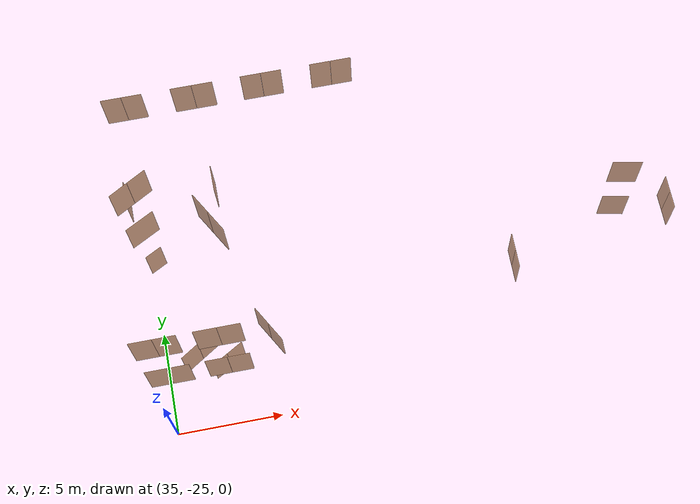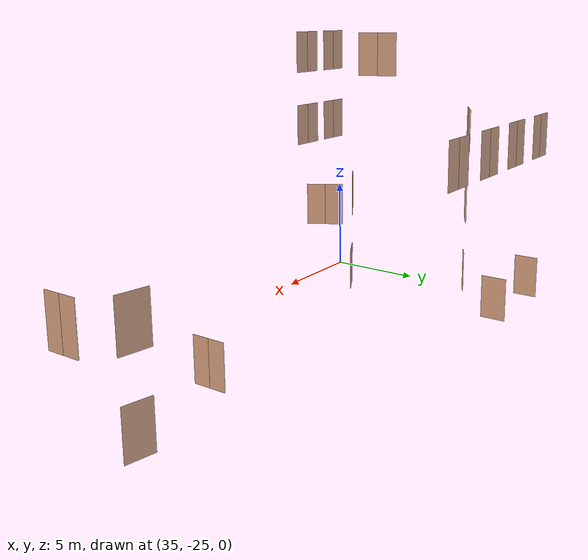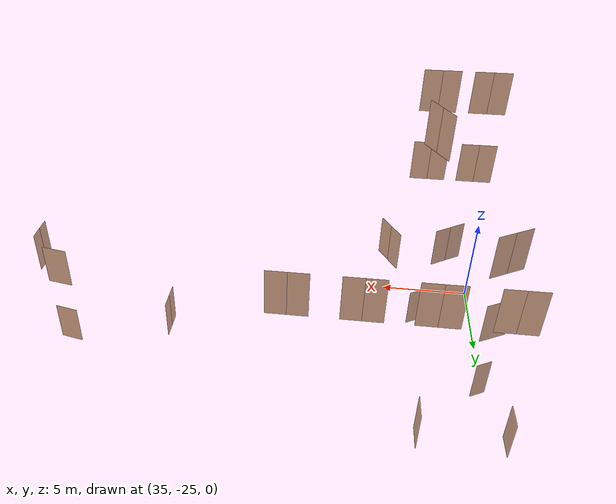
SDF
<sdf version="1.7">
 <world name="sim_world">
  <model name="Snull1">
   <pose>34.31579733412984 -13.190942015457559 0.0 0 0 -1.5647744371355659</pose>
   <link name="right">
    <pose>0 0 1.11 0 0 0</pose>
    <visual name="right_visual">
     <geometry><box><size>1.254855103408931 0.03 2.2</size></box></geometry>
     <material>
      <ambient>0.5 0.25 0 0.6</ambient>
      <diffuse>0.5 0.25 0 0.6</diffuse>
      <pbr><metal><metalness>0.0</metalness></metal></pbr>
     </material>
    </visual>
    <collision name="right_collision">
     <geometry><box><size>1.254855103408931 0.03 2.2</size></box></geometry>
     <surface><contact><collide_bitmask>0x02</collide_bitmask></contact></surface>
    </collision>
    <inertial>
     <mass>50.0</mass>
     <inertia><ixx>20.17041666666667</ixx><iyy>26.72775554396433</iyy><izz>6.564838877297662</izz></inertia>
    </inertial>
   </link>
   <joint name="right_joint" type="revolute">
    <parent>world</parent>
    <child>right</child>
    <axis><xyz>0 0 1</xyz><limit><lower>0</lower><upper>1.57</upper></limit></axis>
    <pose>0.6324275517044655 0 0 0 0 0</pose>
   </joint>
   <plugin name="register_component" filename="libregister_component.so">
    <component name="Door">
     <v_max_door>0.5</v_max_door>
     <a_max_door>0.3</a_max_door>
     <a_nom_door>0.15</a_nom_door>
     <dx_min_door>0.01</dx_min_door>
     <f_max_door>500.0</f_max_door>
     <ros_interface>true</ros_interface>
     <door name="Snull1" type="SwingDoor" left_joint_name="empty_joint" right_joint_name="right_joint"/>
    </component>
   </plugin>
  </model>
  <model name="Snull2">
   <pose>38.63398424373668 -13.186069521711525 0.0 0 0 1.5780668441691235</pose>
   <link name="right">
    <pose>0 0 1.11 0 0 0</pose>
    <visual name="right_visual">
     <geometry><box><size>1.2944066519722939 0.03 2.2</size></box></geometry>
     <material>
      <ambient>0.5 0.25 0 0.6</ambient>
      <diffuse>0.5 0.25 0 0.6</diffuse>
      <pbr><metal><metalness>0.0</metalness></metal></pbr>
     </material>
    </visual>
    <collision name="right_collision">
     <geometry><box><size>1.2944066519722939 0.03 2.2</size></box></geometry>
     <surface><contact><collide_bitmask>0x02</collide_bitmask></contact></surface>
    </collision>
    <inertial>
     <mass>50.0</mass>
     <inertia><ixx>20.17041666666667</ixx><iyy>27.147869086125517</iyy><izz>6.984952419458847</izz></inertia>
    </inertial>
   </link>
   <joint name="right_joint" type="revolute">
    <parent>world</parent>
    <child>right</child>
    <axis><xyz>0 0 -1</xyz><limit><lower>0</lower><upper>1.57</upper></limit></axis>
    <pose>0.6522033259861469 0 0 0 0 0</pose>
   </joint>
   <plugin name="register_component" filename="libregister_component.so">
    <component name="Door">
     <v_max_door>0.5</v_max_door>
     <a_max_door>0.3</a_max_door>
     <a_nom_door>0.15</a_nom_door>
     <dx_min_door>0.01</dx_min_door>
     <f_max_door>500.0</f_max_door>
     <ros_interface>true</ros_interface>
     <door name="Snull2" type="SwingDoor" left_joint_name="empty_joint" right_joint_name="right_joint"/>
    </component>
   </plugin>
  </model>
  <model name="Snull3">
   <pose>52.391853041108135 -19.739573610125817 0.0 0 0 -1.5707963267948966</pose>
   <link name="right">
    <pose>0.4211626778180184 0 1.11 0 0 0</pose>
    <visual name="right_visual">
     <geometry><box><size>0.8323253556360368 0.03 2.2</size></box></geometry>
     <material>
      <ambient>0.5 0.25 0 0.6</ambient>
      <diffuse>0.5 0.25 0 0.6</diffuse>
      <pbr><metal><metalness>0.0</metalness></metal></pbr>
     </material>
    </visual>
    <collision name="right_collision">
     <geometry><box><size>0.8323253556360368 0.03 2.2</size></box></geometry>
     <surface><contact><collide_bitmask>0x02</collide_bitmask></contact></surface>
    </collision>
    <inertial>
     <mass>50.0</mass>
     <inertia><ixx>20.17041666666667</ixx><iyy>23.053189573477734</iyy><izz>2.8902729068110635</izz></inertia>
    </inertial>
   </link>
   <joint name="right_joint" type="revolute">
    <parent>world</parent>
    <child>right</child>
    <axis><xyz>0 0 -1</xyz><limit><lower>0</lower><upper>1.57</upper></limit></axis>
    <pose>0.4211626778180184 0 0 0 0 0</pose>
   </joint>
   <link name="left">
    <pose>-0.4211626778180184 0 1.11 0 0 0</pose>
    <visual name="left_visual">
     <geometry><box><size>0.8323253556360368 0.03 2.2</size></box></geometry>
     <material>
      <ambient>0.5 0.25 0 0.6</ambient>
      <diffuse>0.5 0.25 0 0.6</diffuse>
      <pbr><metal><metalness>0.0</metalness></metal></pbr>
     </material>
    </visual>
    <collision name="left_collision">
     <geometry><box><size>0.8323253556360368 0.03 2.2</size></box></geometry>
     <surface><contact><collide_bitmask>0x02</collide_bitmask></contact></surface>
    </collision>
    <inertial>
     <mass>50.0</mass>
     <inertia><ixx>20.17041666666667</ixx><iyy>23.053189573477734</iyy><izz>2.8902729068110635</izz></inertia>
    </inertial>
   </link>
   <joint name="left_joint" type="revolute">
    <parent>world</parent>
    <child>left</child>
    <axis><xyz>0 0 -1</xyz><limit><lower>-1.57</lower><upper>0</upper></limit></axis>
    <pose>-0.4211626778180184 0 0 0 0 0</pose>
   </joint>
   <plugin name="register_component" filename="libregister_component.so">
    <component name="Door">
     <v_max_door>0.5</v_max_door>
     <a_max_door>0.3</a_max_door>
     <a_nom_door>0.15</a_nom_door>
     <dx_min_door>0.01</dx_min_door>
     <f_max_door>500.0</f_max_door>
     <ros_interface>true</ros_interface>
     <door name="Snull3" type="DoubleSwingDoor" left_joint_name="left_joint" right_joint_name="right_joint"/>
    </component>
   </plugin>
  </model>
  <model name="Snull4">
   <pose>57.814863906209126 -17.951051039838692 0.0 0 0 2.9326769838084155</pose>
   <link name="right">
    <pose>0 0 1.11 0 0 0</pose>
    <visual name="right_visual">
     <geometry><box><size>1.2797012906970477 0.03 2.2</size></box></geometry>
     <material>
      <ambient>0.5 0.25 0 0.6</ambient>
      <diffuse>0.5 0.25 0 0.6</diffuse>
      <pbr><metal><metalness>0.0</metalness></metal></pbr>
     </material>
    </visual>
    <collision name="right_collision">
     <geometry><box><size>1.2797012906970477 0.03 2.2</size></box></geometry>
     <surface><contact><collide_bitmask>0x02</collide_bitmask></contact></surface>
    </collision>
    <inertial>
     <mass>50.0</mass>
     <inertia><ixx>20.17041666666667</ixx><iyy>26.99014747254871</iyy><izz>6.827230805882041</izz></inertia>
    </inertial>
   </link>
   <joint name="right_joint" type="revolute">
    <parent>world</parent>
    <child>right</child>
    <axis><xyz>0 0 1</xyz><limit><lower>0</lower><upper>1.57</upper></limit></axis>
    <pose>0.6448506453485239 0 0 0 0 0</pose>
   </joint>
   <plugin name="register_component" filename="libregister_component.so">
    <component name="Door">
     <v_max_door>0.5</v_max_door>
     <a_max_door>0.3</a_max_door>
     <a_nom_door>0.15</a_nom_door>
     <dx_min_door>0.01</dx_min_door>
     <f_max_door>500.0</f_max_door>
     <ros_interface>true</ros_interface>
     <door name="Snull4" type="SwingDoor" left_joint_name="empty_joint" right_joint_name="right_joint"/>
    </component>
   </plugin>
  </model>
  <model name="Snull10">
   <pose>35.266232311540875 -16.49999999999999 0.0 0 0 -2.654102844831569</pose>
   <link name="right">
    <pose>0 0 1.11 0 0 0</pose>
    <visual name="right_visual">
     <geometry><box><size>0.8774159202349445 0.03 2.2</size></box></geometry>
     <material>
      <ambient>0.5 0.25 0 0.6</ambient>
      <diffuse>0.5 0.25 0 0.6</diffuse>
      <pbr><metal><metalness>0.0</metalness></metal></pbr>
     </material>
    </visual>
    <collision name="right_collision">
     <geometry><box><size>0.8774159202349445 0.03 2.2</size></box></geometry>
     <surface><contact><collide_bitmask>0x02</collide_bitmask></contact></surface>
    </collision>
    <inertial>
     <mass>50.0</mass>
     <inertia><ixx>20.17041666666667</ixx><iyy>23.374411237840565</iyy><izz>3.211494571173894</izz></inertia>
    </inertial>
   </link>
   <joint name="right_joint" type="revolute">
    <parent>world</parent>
    <child>right</child>
    <axis><xyz>0 0 -1</xyz><limit><lower>0</lower><upper>1.57</upper></limit></axis>
    <pose>0.44370796011747227 0 0 0 0 0</pose>
   </joint>
   <plugin name="register_component" filename="libregister_component.so">
    <component name="Door">
     <v_max_door>0.5</v_max_door>
     <a_max_door>0.3</a_max_door>
     <a_nom_door>0.15</a_nom_door>
     <dx_min_door>0.01</dx_min_door>
     <f_max_door>500.0</f_max_door>
     <ros_interface>true</ros_interface>
     <door name="Snull10" type="SwingDoor" left_joint_name="empty_joint" right_joint_name="right_joint"/>
    </component>
   </plugin>
  </model>
  <model name="Snull11">
   <pose>37.988257476757624 -22.20064966583279 0.0 0 0 0.5302253309043828</pose>
   <link name="right">
    <pose>0.43577267423389904 0 1.11 0 0 0</pose>
    <visual name="right_visual">
     <geometry><box><size>0.8615453484677981 0.03 2.2</size></box></geometry>
     <material>
      <ambient>0.5 0.25 0 0.6</ambient>
      <diffuse>0.5 0.25 0 0.6</diffuse>
      <pbr><metal><metalness>0.0</metalness></metal></pbr>
     </material>
    </visual>
    <collision name="right_collision">
     <geometry><box><size>0.8615453484677981 0.03 2.2</size></box></geometry>
     <surface><contact><collide_bitmask>0x02</collide_bitmask></contact></surface>
    </collision>
    <inertial>
     <mass>50.0</mass>
     <inertia><ixx>20.17041666666667</ixx><iyy>23.25941828111042</iyy><izz>3.0965016144437487</izz></inertia>
    </inertial>
   </link>
   <joint name="right_joint" type="revolute">
    <parent>world</parent>
    <child>right</child>
    <axis><xyz>0 0 -1</xyz><limit><lower>0</lower><upper>1.57</upper></limit></axis>
    <pose>0.43577267423389904 0 0 0 0 0</pose>
   </joint>
   <link name="left">
    <pose>-0.43577267423389904 0 1.11 0 0 0</pose>
    <visual name="left_visual">
     <geometry><box><size>0.8615453484677981 0.03 2.2</size></box></geometry>
     <material>
      <ambient>0.5 0.25 0 0.6</ambient>
      <diffuse>0.5 0.25 0 0.6</diffuse>
      <pbr><metal><metalness>0.0</metalness></metal></pbr>
     </material>
    </visual>
    <collision name="left_collision">
     <geometry><box><size>0.8615453484677981 0.03 2.2</size></box></geometry>
     <surface><contact><collide_bitmask>0x02</collide_bitmask></contact></surface>
    </collision>
    <inertial>
     <mass>50.0</mass>
     <inertia><ixx>20.17041666666667</ixx><iyy>23.25941828111042</iyy><izz>3.0965016144437487</izz></inertia>
    </inertial>
   </link>
   <joint name="left_joint" type="revolute">
    <parent>world</parent>
    <child>left</child>
    <axis><xyz>0 0 -1</xyz><limit><lower>-1.57</lower><upper>0</upper></limit></axis>
    <pose>-0.43577267423389904 0 0 0 0 0</pose>
   </joint>
   <plugin name="register_component" filename="libregister_component.so">
    <component name="Door">
     <v_max_door>0.5</v_max_door>
     <a_max_door>0.3</a_max_door>
     <a_nom_door>0.15</a_nom_door>
     <dx_min_door>0.01</dx_min_door>
     <f_max_door>500.0</f_max_door>
     <ros_interface>true</ros_interface>
     <door name="Snull11" type="DoubleSwingDoor" left_joint_name="left_joint" right_joint_name="right_joint"/>
    </component>
   </plugin>
  </model>
  <model name="0null3">
   <pose>59.31019676660564 -19.722286525034527 4.0 0 0 -1.5634548821842686</pose>
   <link name="right">
    <pose>0.38652424956682224 0 1.11 0 0 0</pose>
    <visual name="right_visual">
     <geometry><box><size>0.7630484991336445 0.03 2.2</size></box></geometry>
     <material>
      <ambient>0.5 0.25 0 0.6</ambient>
      <diffuse>0.5 0.25 0 0.6</diffuse>
      <pbr><metal><metalness>0.0</metalness></metal></pbr>
     </material>
    </visual>
    <collision name="right_collision">
     <geometry><box><size>0.7630484991336445 0.03 2.2</size></box></geometry>
     <surface><contact><collide_bitmask>0x02</collide_bitmask></contact></surface>
    </collision>
    <inertial>
     <mass>50.0</mass>
     <inertia><ixx>20.17041666666667</ixx><iyy>22.59267921679212</iyy><izz>2.4297625501254476</izz></inertia>
    </inertial>
   </link>
   <joint name="right_joint" type="revolute">
    <parent>world</parent>
    <child>right</child>
    <axis><xyz>0 0 -1</xyz><limit><lower>0</lower><upper>1.57</upper></limit></axis>
    <pose>0.38652424956682224 0 0 0 0 0</pose>
   </joint>
   <link name="left">
    <pose>-0.38652424956682224 0 1.11 0 0 0</pose>
    <visual name="left_visual">
     <geometry><box><size>0.7630484991336445 0.03 2.2</size></box></geometry>
     <material>
      <ambient>0.5 0.25 0 0.6</ambient>
      <diffuse>0.5 0.25 0 0.6</diffuse>
      <pbr><metal><metalness>0.0</metalness></metal></pbr>
     </material>
    </visual>
    <collision name="left_collision">
     <geometry><box><size>0.7630484991336445 0.03 2.2</size></box></geometry>
     <surface><contact><collide_bitmask>0x02</collide_bitmask></contact></surface>
    </collision>
    <inertial>
     <mass>50.0</mass>
     <inertia><ixx>20.17041666666667</ixx><iyy>22.59267921679212</iyy><izz>2.4297625501254476</izz></inertia>
    </inertial>
   </link>
   <joint name="left_joint" type="revolute">
    <parent>world</parent>
    <child>left</child>
    <axis><xyz>0 0 -1</xyz><limit><lower>-1.57</lower><upper>0</upper></limit></axis>
    <pose>-0.38652424956682224 0 0 0 0 0</pose>
   </joint>
   <plugin name="register_component" filename="libregister_component.so">
    <component name="Door">
     <v_max_door>0.5</v_max_door>
     <a_max_door>0.3</a_max_door>
     <a_nom_door>0.15</a_nom_door>
     <dx_min_door>0.01</dx_min_door>
     <f_max_door>500.0</f_max_door>
     <ros_interface>true</ros_interface>
     <door name="0null3" type="DoubleSwingDoor" left_joint_name="left_joint" right_joint_name="right_joint"/>
    </component>
   </plugin>
  </model>
  <model name="0null4">
   <pose>57.790818802972 -17.92288018519209 4.0 0 0 2.9607776920930116</pose>
   <link name="right">
    <pose>0 0 1.11 0 0 0</pose>
    <visual name="right_visual">
     <geometry><box><size>1.3758835635894442 0.03 2.2</size></box></geometry>
     <material>
      <ambient>0.5 0.25 0 0.6</ambient>
      <diffuse>0.5 0.25 0 0.6</diffuse>
      <pbr><metal><metalness>0.0</metalness></metal></pbr>
     </material>
    </visual>
    <collision name="right_collision">
     <geometry><box><size>1.3758835635894442 0.03 2.2</size></box></geometry>
     <surface><contact><collide_bitmask>0x02</collide_bitmask></contact></surface>
    </collision>
    <inertial>
     <mass>50.0</mass>
     <inertia><ixx>20.17041666666667</ixx><iyy>28.054398252314954</iyy><izz>7.891481585648284</izz></inertia>
    </inertial>
   </link>
   <joint name="right_joint" type="revolute">
    <parent>world</parent>
    <child>right</child>
    <axis><xyz>0 0 1</xyz><limit><lower>0</lower><upper>1.57</upper></limit></axis>
    <pose>0.6929417817947221 0 0 0 0 0</pose>
   </joint>
   <plugin name="register_component" filename="libregister_component.so">
    <component name="Door">
     <v_max_door>0.5</v_max_door>
     <a_max_door>0.3</a_max_door>
     <a_nom_door>0.15</a_nom_door>
     <dx_min_door>0.01</dx_min_door>
     <f_max_door>500.0</f_max_door>
     <ros_interface>true</ros_interface>
     <door name="0null4" type="SwingDoor" left_joint_name="empty_joint" right_joint_name="right_joint"/>
    </component>
   </plugin>
  </model>
  <model name="0null10">
   <pose>35.248963895008 -16.471735802561312 4.0 0 0 -2.6490270736152604</pose>
   <link name="right">
    <pose>0 0 1.11 0 0 0</pose>
    <visual name="right_visual">
     <geometry><box><size>1.4880229338693765 0.03 2.2</size></box></geometry>
     <material>
      <ambient>0.5 0.25 0 0.6</ambient>
      <diffuse>0.5 0.25 0 0.6</diffuse>
      <pbr><metal><metalness>0.0</metalness></metal></pbr>
     </material>
    </visual>
    <collision name="right_collision">
     <geometry><box><size>1.4880229338693765 0.03 2.2</size></box></geometry>
     <surface><contact><collide_bitmask>0x02</collide_bitmask></contact></surface>
    </collision>
    <inertial>
     <mass>50.0</mass>
     <inertia><ixx>20.17041666666667</ixx><iyy>29.39255104883845</iyy><izz>9.22963438217178</izz></inertia>
    </inertial>
   </link>
   <joint name="right_joint" type="revolute">
    <parent>world</parent>
    <child>right</child>
    <axis><xyz>0 0 -1</xyz><limit><lower>0</lower><upper>1.57</upper></limit></axis>
    <pose>0.7490114669346882 0 0 0 0 0</pose>
   </joint>
   <plugin name="register_component" filename="libregister_component.so">
    <component name="Door">
     <v_max_door>0.5</v_max_door>
     <a_max_door>0.3</a_max_door>
     <a_nom_door>0.15</a_nom_door>
     <dx_min_door>0.01</dx_min_door>
     <f_max_door>500.0</f_max_door>
     <ros_interface>true</ros_interface>
     <door name="0null10" type="SwingDoor" left_joint_name="empty_joint" right_joint_name="right_joint"/>
    </component>
   </plugin>
  </model>
  <model name="0null11">
   <pose>37.00974498749204 -22.76595228316468 4.0 0 0 0.5743019062294429</pose>
   <link name="right">
    <pose>0.47297792965331237 0 1.11 0 0 0</pose>
    <visual name="right_visual">
     <geometry><box><size>0.9359558593066247 0.03 2.2</size></box></geometry>
     <material>
      <ambient>0.5 0.25 0 0.6</ambient>
      <diffuse>0.5 0.25 0 0.6</diffuse>
      <pbr><metal><metalness>0.0</metalness></metal></pbr>
     </material>
    </visual>
    <collision name="right_collision">
     <geometry><box><size>0.9359558593066247 0.03 2.2</size></box></geometry>
     <surface><contact><collide_bitmask>0x02</collide_bitmask></contact></surface>
    </collision>
    <inertial>
     <mass>50.0</mass>
     <inertia><ixx>20.17041666666667</ixx><iyy>23.81672237737668</iyy><izz>3.6538057107100097</izz></inertia>
    </inertial>
   </link>
   <joint name="right_joint" type="revolute">
    <parent>world</parent>
    <child>right</child>
    <axis><xyz>0 0 -1</xyz><limit><lower>0</lower><upper>1.57</upper></limit></axis>
    <pose>0.47297792965331237 0 0 0 0 0</pose>
   </joint>
   <link name="left">
    <pose>-0.47297792965331237 0 1.11 0 0 0</pose>
    <visual name="left_visual">
     <geometry><box><size>0.9359558593066247 0.03 2.2</size></box></geometry>
     <material>
      <ambient>0.5 0.25 0 0.6</ambient>
      <diffuse>0.5 0.25 0 0.6</diffuse>
      <pbr><metal><metalness>0.0</metalness></metal></pbr>
     </material>
    </visual>
    <collision name="left_collision">
     <geometry><box><size>0.9359558593066247 0.03 2.2</size></box></geometry>
     <surface><contact><collide_bitmask>0x02</collide_bitmask></contact></surface>
    </collision>
    <inertial>
     <mass>50.0</mass>
     <inertia><ixx>20.17041666666667</ixx><iyy>23.81672237737668</iyy><izz>3.6538057107100097</izz></inertia>
    </inertial>
   </link>
   <joint name="left_joint" type="revolute">
    <parent>world</parent>
    <child>left</child>
    <axis><xyz>0 0 -1</xyz><limit><lower>-1.57</lower><upper>0</upper></limit></axis>
    <pose>-0.47297792965331237 0 0 0 0 0</pose>
   </joint>
   <plugin name="register_component" filename="libregister_component.so">
    <component name="Door">
     <v_max_door>0.5</v_max_door>
     <a_max_door>0.3</a_max_door>
     <a_nom_door>0.15</a_nom_door>
     <dx_min_door>0.01</dx_min_door>
     <f_max_door>500.0</f_max_door>
     <ros_interface>true</ros_interface>
     <door name="0null11" type="DoubleSwingDoor" left_joint_name="left_joint" right_joint_name="right_joint"/>
    </component>
   </plugin>
  </model>
  <model name="nullh">
   <pose>40.21235485195831 -22.439999253257646 4.0 0 0 2.0911618790122812</pose>
   <link name="right">
    <pose>0.47946386376674144 0 1.11 0 0 0</pose>
    <visual name="right_visual">
     <geometry><box><size>0.9489277275334829 0.03 2.2</size></box></geometry>
     <material>
      <ambient>0.5 0.25 0 0.6</ambient>
      <diffuse>0.5 0.25 0 0.6</diffuse>
      <pbr><metal><metalness>0.0</metalness></metal></pbr>
     </material>
    </visual>
    <collision name="right_collision">
     <geometry><box><size>0.9489277275334829 0.03 2.2</size></box></geometry>
     <surface><contact><collide_bitmask>0x02</collide_bitmask></contact></surface>
    </collision>
    <inertial>
     <mass>50.0</mass>
     <inertia><ixx>20.17041666666667</ixx><iyy>23.918599300341086</iyy><izz>3.7556826336744162</izz></inertia>
    </inertial>
   </link>
   <joint name="right_joint" type="revolute">
    <parent>world</parent>
    <child>right</child>
    <axis><xyz>0 0 -1</xyz><limit><lower>0</lower><upper>1.57</upper></limit></axis>
    <pose>0.47946386376674144 0 0 0 0 0</pose>
   </joint>
   <link name="left">
    <pose>-0.47946386376674144 0 1.11 0 0 0</pose>
    <visual name="left_visual">
     <geometry><box><size>0.9489277275334829 0.03 2.2</size></box></geometry>
     <material>
      <ambient>0.5 0.25 0 0.6</ambient>
      <diffuse>0.5 0.25 0 0.6</diffuse>
      <pbr><metal><metalness>0.0</metalness></metal></pbr>
     </material>
    </visual>
    <collision name="left_collision">
     <geometry><box><size>0.9489277275334829 0.03 2.2</size></box></geometry>
     <surface><contact><collide_bitmask>0x02</collide_bitmask></contact></surface>
    </collision>
    <inertial>
     <mass>50.0</mass>
     <inertia><ixx>20.17041666666667</ixx><iyy>23.918599300341086</iyy><izz>3.7556826336744162</izz></inertia>
    </inertial>
   </link>
   <joint name="left_joint" type="revolute">
    <parent>world</parent>
    <child>left</child>
    <axis><xyz>0 0 -1</xyz><limit><lower>-1.57</lower><upper>0</upper></limit></axis>
    <pose>-0.47946386376674144 0 0 0 0 0</pose>
   </joint>
   <plugin name="register_component" filename="libregister_component.so">
    <component name="Door">
     <v_max_door>0.5</v_max_door>
     <a_max_door>0.3</a_max_door>
     <a_nom_door>0.15</a_nom_door>
     <dx_min_door>0.01</dx_min_door>
     <f_max_door>500.0</f_max_door>
     <ros_interface>true</ros_interface>
     <door name="nullh" type="DoubleSwingDoor" left_joint_name="left_joint" right_joint_name="right_joint"/>
    </component>
   </plugin>
  </model>
  <model name="1null10">
   <pose>35.38498301161182 -16.359892469103524 8.0 0 0 -2.6214980729820914</pose>
   <link name="right">
    <pose>0.47606565224283276 0 1.11 0 0 0</pose>
    <visual name="right_visual">
     <geometry><box><size>0.9421313044856655 0.03 2.2</size></box></geometry>
     <material>
      <ambient>0.5 0.25 0 0.6</ambient>
      <diffuse>0.5 0.25 0 0.6</diffuse>
      <pbr><metal><metalness>0.0</metalness></metal></pbr>
     </material>
    </visual>
    <collision name="right_collision">
     <geometry><box><size>0.9421313044856655 0.03 2.2</size></box></geometry>
     <surface><contact><collide_bitmask>0x02</collide_bitmask></contact></surface>
    </collision>
    <inertial>
     <mass>50.0</mass>
     <inertia><ixx>20.17041666666667</ixx><iyy>23.865047478716097</iyy><izz>3.7021308120494245</izz></inertia>
    </inertial>
   </link>
   <joint name="right_joint" type="revolute">
    <parent>world</parent>
    <child>right</child>
    <axis><xyz>0 0 1</xyz><limit><lower>0</lower><upper>1.57</upper></limit></axis>
    <pose>0.47606565224283276 0 0 0 0 0</pose>
   </joint>
   <link name="left">
    <pose>-0.47606565224283276 0 1.11 0 0 0</pose>
    <visual name="left_visual">
     <geometry><box><size>0.9421313044856655 0.03 2.2</size></box></geometry>
     <material>
      <ambient>0.5 0.25 0 0.6</ambient>
      <diffuse>0.5 0.25 0 0.6</diffuse>
      <pbr><metal><metalness>0.0</metalness></metal></pbr>
     </material>
    </visual>
    <collision name="left_collision">
     <geometry><box><size>0.9421313044856655 0.03 2.2</size></box></geometry>
     <surface><contact><collide_bitmask>0x02</collide_bitmask></contact></surface>
    </collision>
    <inertial>
     <mass>50.0</mass>
     <inertia><ixx>20.17041666666667</ixx><iyy>23.865047478716097</iyy><izz>3.7021308120494245</izz></inertia>
    </inertial>
   </link>
   <joint name="left_joint" type="revolute">
    <parent>world</parent>
    <child>left</child>
    <axis><xyz>0 0 1</xyz><limit><lower>-1.57</lower><upper>0</upper></limit></axis>
    <pose>-0.47606565224283276 0 0 0 0 0</pose>
   </joint>
   <plugin name="register_component" filename="libregister_component.so">
    <component name="Door">
     <v_max_door>0.5</v_max_door>
     <a_max_door>0.3</a_max_door>
     <a_nom_door>0.15</a_nom_door>
     <dx_min_door>0.01</dx_min_door>
     <f_max_door>500.0</f_max_door>
     <ros_interface>true</ros_interface>
     <door name="1null10" type="DoubleSwingDoor" left_joint_name="left_joint" right_joint_name="right_joint"/>
    </component>
   </plugin>
  </model>
  <model name="1ull77">
   <pose>35.65018855243996 -12.253967068662948 8.0 0 0 0.0</pose>
   <link name="right">
    <pose>0.4535152895493404 0 1.11 0 0 0</pose>
    <visual name="right_visual">
     <geometry><box><size>0.8970305790986808 0.03 2.2</size></box></geometry>
     <material>
      <ambient>0.5 0.25 0 0.6</ambient>
      <diffuse>0.5 0.25 0 0.6</diffuse>
      <pbr><metal><metalness>0.0</metalness></metal></pbr>
     </material>
    </visual>
    <collision name="right_collision">
     <geometry><box><size>0.8970305790986808 0.03 2.2</size></box></geometry>
     <surface><contact><collide_bitmask>0x02</collide_bitmask></contact></surface>
    </collision>
    <inertial>
     <mass>50.0</mass>
     <inertia><ixx>20.17041666666667</ixx><iyy>23.519432749325482</iyy><izz>3.356516082658811</izz></inertia>
    </inertial>
   </link>
   <joint name="right_joint" type="revolute">
    <parent>world</parent>
    <child>right</child>
    <axis><xyz>0 0 -1</xyz><limit><lower>0</lower><upper>1.57</upper></limit></axis>
    <pose>0.4535152895493404 0 0 0 0 0</pose>
   </joint>
   <link name="left">
    <pose>-0.4535152895493404 0 1.11 0 0 0</pose>
    <visual name="left_visual">
     <geometry><box><size>0.8970305790986808 0.03 2.2</size></box></geometry>
     <material>
      <ambient>0.5 0.25 0 0.6</ambient>
      <diffuse>0.5 0.25 0 0.6</diffuse>
      <pbr><metal><metalness>0.0</metalness></metal></pbr>
     </material>
    </visual>
    <collision name="left_collision">
     <geometry><box><size>0.8970305790986808 0.03 2.2</size></box></geometry>
     <surface><contact><collide_bitmask>0x02</collide_bitmask></contact></surface>
    </collision>
    <inertial>
     <mass>50.0</mass>
     <inertia><ixx>20.17041666666667</ixx><iyy>23.519432749325482</iyy><izz>3.356516082658811</izz></inertia>
    </inertial>
   </link>
   <joint name="left_joint" type="revolute">
    <parent>world</parent>
    <child>left</child>
    <axis><xyz>0 0 -1</xyz><limit><lower>-1.57</lower><upper>0</upper></limit></axis>
    <pose>-0.4535152895493404 0 0 0 0 0</pose>
   </joint>
   <plugin name="register_component" filename="libregister_component.so">
    <component name="Door">
     <v_max_door>0.5</v_max_door>
     <a_max_door>0.3</a_max_door>
     <a_nom_door>0.15</a_nom_door>
     <dx_min_door>0.01</dx_min_door>
     <f_max_door>500.0</f_max_door>
     <ros_interface>true</ros_interface>
     <door name="1ull77" type="DoubleSwingDoor" left_joint_name="left_joint" right_joint_name="right_joint"/>
    </component>
   </plugin>
  </model>
  <model name="1null78">
   <pose>38.76369338759659 -12.253967068662948 8.0 0 0 0.0</pose>
   <link name="right">
    <pose>0.4695889183437263 0 1.11 0 0 0</pose>
    <visual name="right_visual">
     <geometry><box><size>0.9291778366874526 0.03 2.2</size></box></geometry>
     <material>
      <ambient>0.5 0.25 0 0.6</ambient>
      <diffuse>0.5 0.25 0 0.6</diffuse>
      <pbr><metal><metalness>0.0</metalness></metal></pbr>
     </material>
    </visual>
    <collision name="right_collision">
     <geometry><box><size>0.9291778366874526 0.03 2.2</size></box></geometry>
     <surface><contact><collide_bitmask>0x02</collide_bitmask></contact></surface>
    </collision>
    <inertial>
     <mass>50.0</mass>
     <inertia><ixx>20.17041666666667</ixx><iyy>23.76404771746323</iyy><izz>3.60113105079656</izz></inertia>
    </inertial>
   </link>
   <joint name="right_joint" type="revolute">
    <parent>world</parent>
    <child>right</child>
    <axis><xyz>0 0 -1</xyz><limit><lower>0</lower><upper>1.57</upper></limit></axis>
    <pose>0.4695889183437263 0 0 0 0 0</pose>
   </joint>
   <link name="left">
    <pose>-0.4695889183437263 0 1.11 0 0 0</pose>
    <visual name="left_visual">
     <geometry><box><size>0.9291778366874526 0.03 2.2</size></box></geometry>
     <material>
      <ambient>0.5 0.25 0 0.6</ambient>
      <diffuse>0.5 0.25 0 0.6</diffuse>
      <pbr><metal><metalness>0.0</metalness></metal></pbr>
     </material>
    </visual>
    <collision name="left_collision">
     <geometry><box><size>0.9291778366874526 0.03 2.2</size></box></geometry>
     <surface><contact><collide_bitmask>0x02</collide_bitmask></contact></surface>
    </collision>
    <inertial>
     <mass>50.0</mass>
     <inertia><ixx>20.17041666666667</ixx><iyy>23.76404771746323</iyy><izz>3.60113105079656</izz></inertia>
    </inertial>
   </link>
   <joint name="left_joint" type="revolute">
    <parent>world</parent>
    <child>left</child>
    <axis><xyz>0 0 -1</xyz><limit><lower>-1.57</lower><upper>0</upper></limit></axis>
    <pose>-0.4695889183437263 0 0 0 0 0</pose>
   </joint>
   <plugin name="register_component" filename="libregister_component.so">
    <component name="Door">
     <v_max_door>0.5</v_max_door>
     <a_max_door>0.3</a_max_door>
     <a_nom_door>0.15</a_nom_door>
     <dx_min_door>0.01</dx_min_door>
     <f_max_door>500.0</f_max_door>
     <ros_interface>true</ros_interface>
     <door name="1null78" type="DoubleSwingDoor" left_joint_name="left_joint" right_joint_name="right_joint"/>
    </component>
   </plugin>
  </model>
  <model name="1null79">
   <pose>41.85866034424819 -12.243400664600673 8.0 0 0 0.0</pose>
   <link name="right">
    <pose>0.4572770040697467 0 1.11 0 0 0</pose>
    <visual name="right_visual">
     <geometry><box><size>0.9045540081394934 0.03 2.2</size></box></geometry>
     <material>
      <ambient>0.5 0.25 0 0.6</ambient>
      <diffuse>0.5 0.25 0 0.6</diffuse>
      <pbr><metal><metalness>0.0</metalness></metal></pbr>
     </material>
    </visual>
    <collision name="right_collision">
     <geometry><box><size>0.9045540081394934 0.03 2.2</size></box></geometry>
     <surface><contact><collide_bitmask>0x02</collide_bitmask></contact></surface>
    </collision>
    <inertial>
     <mass>50.0</mass>
     <inertia><ixx>20.17041666666667</ixx><iyy>23.575908140171766</iyy><izz>3.4129914735050946</izz></inertia>
    </inertial>
   </link>
   <joint name="right_joint" type="revolute">
    <parent>world</parent>
    <child>right</child>
    <axis><xyz>0 0 -1</xyz><limit><lower>0</lower><upper>1.57</upper></limit></axis>
    <pose>0.4572770040697467 0 0 0 0 0</pose>
   </joint>
   <link name="left">
    <pose>-0.4572770040697467 0 1.11 0 0 0</pose>
    <visual name="left_visual">
     <geometry><box><size>0.9045540081394934 0.03 2.2</size></box></geometry>
     <material>
      <ambient>0.5 0.25 0 0.6</ambient>
      <diffuse>0.5 0.25 0 0.6</diffuse>
      <pbr><metal><metalness>0.0</metalness></metal></pbr>
     </material>
    </visual>
    <collision name="left_collision">
     <geometry><box><size>0.9045540081394934 0.03 2.2</size></box></geometry>
     <surface><contact><collide_bitmask>0x02</collide_bitmask></contact></surface>
    </collision>
    <inertial>
     <mass>50.0</mass>
     <inertia><ixx>20.17041666666667</ixx><iyy>23.575908140171766</iyy><izz>3.4129914735050946</izz></inertia>
    </inertial>
   </link>
   <joint name="left_joint" type="revolute">
    <parent>world</parent>
    <child>left</child>
    <axis><xyz>0 0 -1</xyz><limit><lower>-1.57</lower><upper>0</upper></limit></axis>
    <pose>-0.4572770040697467 0 0 0 0 0</pose>
   </joint>
   <plugin name="register_component" filename="libregister_component.so">
    <component name="Door">
     <v_max_door>0.5</v_max_door>
     <a_max_door>0.3</a_max_door>
     <a_nom_door>0.15</a_nom_door>
     <dx_min_door>0.01</dx_min_door>
     <f_max_door>500.0</f_max_door>
     <ros_interface>true</ros_interface>
     <door name="1null79" type="DoubleSwingDoor" left_joint_name="left_joint" right_joint_name="right_joint"/>
    </component>
   </plugin>
  </model>
  <model name="1null80">
   <pose>44.98934025314563 -12.243400664600673 8.0 0 0 0.0</pose>
   <link name="right">
    <pose>0.46334428555426754 0 1.11 0 0 0</pose>
    <visual name="right_visual">
     <geometry><box><size>0.9166885711085351 0.03 2.2</size></box></geometry>
     <material>
      <ambient>0.5 0.25 0 0.6</ambient>
      <diffuse>0.5 0.25 0 0.6</diffuse>
      <pbr><metal><metalness>0.0</metalness></metal></pbr>
     </material>
    </visual>
    <collision name="right_collision">
     <geometry><box><size>0.9166885711085351 0.03 2.2</size></box></geometry>
     <surface><contact><collide_bitmask>0x02</collide_bitmask></contact></surface>
    </collision>
    <inertial>
     <mass>50.0</mass>
     <inertia><ixx>20.17041666666667</ixx><iyy>23.66799140167087</iyy><izz>3.5050747350041997</izz></inertia>
    </inertial>
   </link>
   <joint name="right_joint" type="revolute">
    <parent>world</parent>
    <child>right</child>
    <axis><xyz>0 0 -1</xyz><limit><lower>0</lower><upper>1.57</upper></limit></axis>
    <pose>0.46334428555426754 0 0 0 0 0</pose>
   </joint>
   <link name="left">
    <pose>-0.46334428555426754 0 1.11 0 0 0</pose>
    <visual name="left_visual">
     <geometry><box><size>0.9166885711085351 0.03 2.2</size></box></geometry>
     <material>
      <ambient>0.5 0.25 0 0.6</ambient>
      <diffuse>0.5 0.25 0 0.6</diffuse>
      <pbr><metal><metalness>0.0</metalness></metal></pbr>
     </material>
    </visual>
    <collision name="left_collision">
     <geometry><box><size>0.9166885711085351 0.03 2.2</size></box></geometry>
     <surface><contact><collide_bitmask>0x02</collide_bitmask></contact></surface>
    </collision>
    <inertial>
     <mass>50.0</mass>
     <inertia><ixx>20.17041666666667</ixx><iyy>23.66799140167087</iyy><izz>3.5050747350041997</izz></inertia>
    </inertial>
   </link>
   <joint name="left_joint" type="revolute">
    <parent>world</parent>
    <child>left</child>
    <axis><xyz>0 0 -1</xyz><limit><lower>-1.57</lower><upper>0</upper></limit></axis>
    <pose>-0.46334428555426754 0 0 0 0 0</pose>
   </joint>
   <plugin name="register_component" filename="libregister_component.so">
    <component name="Door">
     <v_max_door>0.5</v_max_door>
     <a_max_door>0.3</a_max_door>
     <a_nom_door>0.15</a_nom_door>
     <dx_min_door>0.01</dx_min_door>
     <f_max_door>500.0</f_max_door>
     <ros_interface>true</ros_interface>
     <door name="1null80" type="DoubleSwingDoor" left_joint_name="left_joint" right_joint_name="right_joint"/>
    </component>
   </plugin>
  </model>
  <model name="1null81">
   <pose>35.91729828622631 -24.852481051413196 8.0 0 0 0.0</pose>
   <link name="right">
    <pose>0.46516446999962646 0 1.11 0 0 0</pose>
    <visual name="right_visual">
     <geometry><box><size>0.9203289399992529 0.03 2.2</size></box></geometry>
     <material>
      <ambient>0.5 0.25 0 0.6</ambient>
      <diffuse>0.5 0.25 0 0.6</diffuse>
      <pbr><metal><metalness>0.0</metalness></metal></pbr>
     </material>
    </visual>
    <collision name="right_collision">
     <geometry><box><size>0.9203289399992529 0.03 2.2</size></box></geometry>
     <surface><contact><collide_bitmask>0x02</collide_bitmask></contact></surface>
    </collision>
    <inertial>
     <mass>50.0</mass>
     <inertia><ixx>20.17041666666667</ixx><iyy>23.695855657500626</iyy><izz>3.5329389908339524</izz></inertia>
    </inertial>
   </link>
   <joint name="right_joint" type="revolute">
    <parent>world</parent>
    <child>right</child>
    <axis><xyz>0 0 -1</xyz><limit><lower>0</lower><upper>1.57</upper></limit></axis>
    <pose>0.46516446999962646 0 0 0 0 0</pose>
   </joint>
   <link name="left">
    <pose>-0.46516446999962646 0 1.11 0 0 0</pose>
    <visual name="left_visual">
     <geometry><box><size>0.9203289399992529 0.03 2.2</size></box></geometry>
     <material>
      <ambient>0.5 0.25 0 0.6</ambient>
      <diffuse>0.5 0.25 0 0.6</diffuse>
      <pbr><metal><metalness>0.0</metalness></metal></pbr>
     </material>
    </visual>
    <collision name="left_collision">
     <geometry><box><size>0.9203289399992529 0.03 2.2</size></box></geometry>
     <surface><contact><collide_bitmask>0x02</collide_bitmask></contact></surface>
    </collision>
    <inertial>
     <mass>50.0</mass>
     <inertia><ixx>20.17041666666667</ixx><iyy>23.695855657500626</iyy><izz>3.5329389908339524</izz></inertia>
    </inertial>
   </link>
   <joint name="left_joint" type="revolute">
    <parent>world</parent>
    <child>left</child>
    <axis><xyz>0 0 -1</xyz><limit><lower>-1.57</lower><upper>0</upper></limit></axis>
    <pose>-0.46516446999962646 0 0 0 0 0</pose>
   </joint>
   <plugin name="register_component" filename="libregister_component.so">
    <component name="Door">
     <v_max_door>0.5</v_max_door>
     <a_max_door>0.3</a_max_door>
     <a_nom_door>0.15</a_nom_door>
     <dx_min_door>0.01</dx_min_door>
     <f_max_door>500.0</f_max_door>
     <ros_interface>true</ros_interface>
     <door name="1null81" type="DoubleSwingDoor" left_joint_name="left_joint" right_joint_name="right_joint"/>
    </component>
   </plugin>
  </model>
  <model name="1null82">
   <pose>38.42646454840755 -24.852481051413196 8.0 0 0 3.141592653589793</pose>
   <link name="right">
    <pose>0.46856214763096027 0 1.11 0 0 0</pose>
    <visual name="right_visual">
     <geometry><box><size>0.9271242952619205 0.03 2.2</size></box></geometry>
     <material>
      <ambient>0.5 0.25 0 0.6</ambient>
      <diffuse>0.5 0.25 0 0.6</diffuse>
      <pbr><metal><metalness>0.0</metalness></metal></pbr>
     </material>
    </visual>
    <collision name="right_collision">
     <geometry><box><size>0.9271242952619205 0.03 2.2</size></box></geometry>
     <surface><contact><collide_bitmask>0x02</collide_bitmask></contact></surface>
    </collision>
    <inertial>
     <mass>50.0</mass>
     <inertia><ixx>20.17041666666667</ixx><iyy>23.748164411937143</iyy><izz>3.5852477452704705</izz></inertia>
    </inertial>
   </link>
   <joint name="right_joint" type="revolute">
    <parent>world</parent>
    <child>right</child>
    <axis><xyz>0 0 -1</xyz><limit><lower>0</lower><upper>1.57</upper></limit></axis>
    <pose>0.46856214763096027 0 0 0 0 0</pose>
   </joint>
   <link name="left">
    <pose>-0.46856214763096027 0 1.11 0 0 0</pose>
    <visual name="left_visual">
     <geometry><box><size>0.9271242952619205 0.03 2.2</size></box></geometry>
     <material>
      <ambient>0.5 0.25 0 0.6</ambient>
      <diffuse>0.5 0.25 0 0.6</diffuse>
      <pbr><metal><metalness>0.0</metalness></metal></pbr>
     </material>
    </visual>
    <collision name="left_collision">
     <geometry><box><size>0.9271242952619205 0.03 2.2</size></box></geometry>
     <surface><contact><collide_bitmask>0x02</collide_bitmask></contact></surface>
    </collision>
    <inertial>
     <mass>50.0</mass>
     <inertia><ixx>20.17041666666667</ixx><iyy>23.748164411937143</iyy><izz>3.5852477452704705</izz></inertia>
    </inertial>
   </link>
   <joint name="left_joint" type="revolute">
    <parent>world</parent>
    <child>left</child>
    <axis><xyz>0 0 -1</xyz><limit><lower>-1.57</lower><upper>0</upper></limit></axis>
    <pose>-0.46856214763096027 0 0 0 0 0</pose>
   </joint>
   <plugin name="register_component" filename="libregister_component.so">
    <component name="Door">
     <v_max_door>0.5</v_max_door>
     <a_max_door>0.3</a_max_door>
     <a_nom_door>0.15</a_nom_door>
     <dx_min_door>0.01</dx_min_door>
     <f_max_door>500.0</f_max_door>
     <ros_interface>true</ros_interface>
     <door name="1null82" type="DoubleSwingDoor" left_joint_name="left_joint" right_joint_name="right_joint"/>
    </component>
   </plugin>
  </model>
  <model name="2null76">
   <pose>35.91729828622631 -24.852481051413196 12.0 0 0 0.0</pose>
   <link name="right">
    <pose>0.46516446999962646 0 1.11 0 0 0</pose>
    <visual name="right_visual">
     <geometry><box><size>0.9203289399992529 0.03 2.2</size></box></geometry>
     <material>
      <ambient>0.5 0.25 0 0.6</ambient>
      <diffuse>0.5 0.25 0 0.6</diffuse>
      <pbr><metal><metalness>0.0</metalness></metal></pbr>
     </material>
    </visual>
    <collision name="right_collision">
     <geometry><box><size>0.9203289399992529 0.03 2.2</size></box></geometry>
     <surface><contact><collide_bitmask>0x02</collide_bitmask></contact></surface>
    </collision>
    <inertial>
     <mass>50.0</mass>
     <inertia><ixx>20.17041666666667</ixx><iyy>23.695855657500626</iyy><izz>3.5329389908339524</izz></inertia>
    </inertial>
   </link>
   <joint name="right_joint" type="revolute">
    <parent>world</parent>
    <child>right</child>
    <axis><xyz>0 0 -1</xyz><limit><lower>0</lower><upper>1.57</upper></limit></axis>
    <pose>0.46516446999962646 0 0 0 0 0</pose>
   </joint>
   <link name="left">
    <pose>-0.46516446999962646 0 1.11 0 0 0</pose>
    <visual name="left_visual">
     <geometry><box><size>0.9203289399992529 0.03 2.2</size></box></geometry>
     <material>
      <ambient>0.5 0.25 0 0.6</ambient>
      <diffuse>0.5 0.25 0 0.6</diffuse>
      <pbr><metal><metalness>0.0</metalness></metal></pbr>
     </material>
    </visual>
    <collision name="left_collision">
     <geometry><box><size>0.9203289399992529 0.03 2.2</size></box></geometry>
     <surface><contact><collide_bitmask>0x02</collide_bitmask></contact></surface>
    </collision>
    <inertial>
     <mass>50.0</mass>
     <inertia><ixx>20.17041666666667</ixx><iyy>23.695855657500626</iyy><izz>3.5329389908339524</izz></inertia>
    </inertial>
   </link>
   <joint name="left_joint" type="revolute">
    <parent>world</parent>
    <child>left</child>
    <axis><xyz>0 0 -1</xyz><limit><lower>-1.57</lower><upper>0</upper></limit></axis>
    <pose>-0.46516446999962646 0 0 0 0 0</pose>
   </joint>
   <plugin name="register_component" filename="libregister_component.so">
    <component name="Door">
     <v_max_door>0.5</v_max_door>
     <a_max_door>0.3</a_max_door>
     <a_nom_door>0.15</a_nom_door>
     <dx_min_door>0.01</dx_min_door>
     <f_max_door>500.0</f_max_door>
     <ros_interface>true</ros_interface>
     <door name="2null76" type="DoubleSwingDoor" left_joint_name="left_joint" right_joint_name="right_joint"/>
    </component>
   </plugin>
  </model>
  <model name="2null77">
   <pose>38.42646454840755 -24.852481051413196 12.0 0 0 3.141592653589793</pose>
   <link name="right">
    <pose>0.46856214763096027 0 1.11 0 0 0</pose>
    <visual name="right_visual">
     <geometry><box><size>0.9271242952619205 0.03 2.2</size></box></geometry>
     <material>
      <ambient>0.5 0.25 0 0.6</ambient>
      <diffuse>0.5 0.25 0 0.6</diffuse>
      <pbr><metal><metalness>0.0</metalness></metal></pbr>
     </material>
    </visual>
    <collision name="right_collision">
     <geometry><box><size>0.9271242952619205 0.03 2.2</size></box></geometry>
     <surface><contact><collide_bitmask>0x02</collide_bitmask></contact></surface>
    </collision>
    <inertial>
     <mass>50.0</mass>
     <inertia><ixx>20.17041666666667</ixx><iyy>23.748164411937143</iyy><izz>3.5852477452704705</izz></inertia>
    </inertial>
   </link>
   <joint name="right_joint" type="revolute">
    <parent>world</parent>
    <child>right</child>
    <axis><xyz>0 0 -1</xyz><limit><lower>0</lower><upper>1.57</upper></limit></axis>
    <pose>0.46856214763096027 0 0 0 0 0</pose>
   </joint>
   <link name="left">
    <pose>-0.46856214763096027 0 1.11 0 0 0</pose>
    <visual name="left_visual">
     <geometry><box><size>0.9271242952619205 0.03 2.2</size></box></geometry>
     <material>
      <ambient>0.5 0.25 0 0.6</ambient>
      <diffuse>0.5 0.25 0 0.6</diffuse>
      <pbr><metal><metalness>0.0</metalness></metal></pbr>
     </material>
    </visual>
    <collision name="left_collision">
     <geometry><box><size>0.9271242952619205 0.03 2.2</size></box></geometry>
     <surface><contact><collide_bitmask>0x02</collide_bitmask></contact></surface>
    </collision>
    <inertial>
     <mass>50.0</mass>
     <inertia><ixx>20.17041666666667</ixx><iyy>23.748164411937143</iyy><izz>3.5852477452704705</izz></inertia>
    </inertial>
   </link>
   <joint name="left_joint" type="revolute">
    <parent>world</parent>
    <child>left</child>
    <axis><xyz>0 0 -1</xyz><limit><lower>-1.57</lower><upper>0</upper></limit></axis>
    <pose>-0.46856214763096027 0 0 0 0 0</pose>
   </joint>
   <plugin name="register_component" filename="libregister_component.so">
    <component name="Door">
     <v_max_door>0.5</v_max_door>
     <a_max_door>0.3</a_max_door>
     <a_nom_door>0.15</a_nom_door>
     <dx_min_door>0.01</dx_min_door>
     <f_max_door>500.0</f_max_door>
     <ros_interface>true</ros_interface>
     <door name="2null77" type="DoubleSwingDoor" left_joint_name="left_joint" right_joint_name="right_joint"/>
    </component>
   </plugin>
  </model>
  <model name="nulljh">
   <pose>38.814919911884374 -20.053205391479658 12.0 0 0 2.0967016108945216</pose>
   <link name="right">
    <pose>0.4912620349139623 0 1.11 0 0 0</pose>
    <visual name="right_visual">
     <geometry><box><size>0.9725240698279246 0.03 2.2</size></box></geometry>
     <material>
      <ambient>0.5 0.25 0 0.6</ambient>
      <diffuse>0.5 0.25 0 0.6</diffuse>
      <pbr><metal><metalness>0.0</metalness></metal></pbr>
     </material>
    </visual>
    <collision name="right_collision">
     <geometry><box><size>0.9725240698279246 0.03 2.2</size></box></geometry>
     <surface><contact><collide_bitmask>0x02</collide_bitmask></contact></surface>
    </collision>
    <inertial>
     <mass>50.0</mass>
     <inertia><ixx>20.17041666666667</ixx><iyy>24.107512776644462</iyy><izz>3.9445961099777915</izz></inertia>
    </inertial>
   </link>
   <joint name="right_joint" type="revolute">
    <parent>world</parent>
    <child>right</child>
    <axis><xyz>0 0 -1</xyz><limit><lower>0</lower><upper>1.57</upper></limit></axis>
    <pose>0.4912620349139623 0 0 0 0 0</pose>
   </joint>
   <link name="left">
    <pose>-0.4912620349139623 0 1.11 0 0 0</pose>
    <visual name="left_visual">
     <geometry><box><size>0.9725240698279246 0.03 2.2</size></box></geometry>
     <material>
      <ambient>0.5 0.25 0 0.6</ambient>
      <diffuse>0.5 0.25 0 0.6</diffuse>
      <pbr><metal><metalness>0.0</metalness></metal></pbr>
     </material>
    </visual>
    <collision name="left_collision">
     <geometry><box><size>0.9725240698279246 0.03 2.2</size></box></geometry>
     <surface><contact><collide_bitmask>0x02</collide_bitmask></contact></surface>
    </collision>
    <inertial>
     <mass>50.0</mass>
     <inertia><ixx>20.17041666666667</ixx><iyy>24.107512776644462</iyy><izz>3.9445961099777915</izz></inertia>
    </inertial>
   </link>
   <joint name="left_joint" type="revolute">
    <parent>world</parent>
    <child>left</child>
    <axis><xyz>0 0 -1</xyz><limit><lower>-1.57</lower><upper>0</upper></limit></axis>
    <pose>-0.4912620349139623 0 0 0 0 0</pose>
   </joint>
   <plugin name="register_component" filename="libregister_component.so">
    <component name="Door">
     <v_max_door>0.5</v_max_door>
     <a_max_door>0.3</a_max_door>
     <a_nom_door>0.15</a_nom_door>
     <dx_min_door>0.01</dx_min_door>
     <f_max_door>500.0</f_max_door>
     <ros_interface>true</ros_interface>
     <door name="nulljh" type="DoubleSwingDoor" left_joint_name="left_joint" right_joint_name="right_joint"/>
    </component>
   </plugin>
  </model>
 </world>
</sdf>
